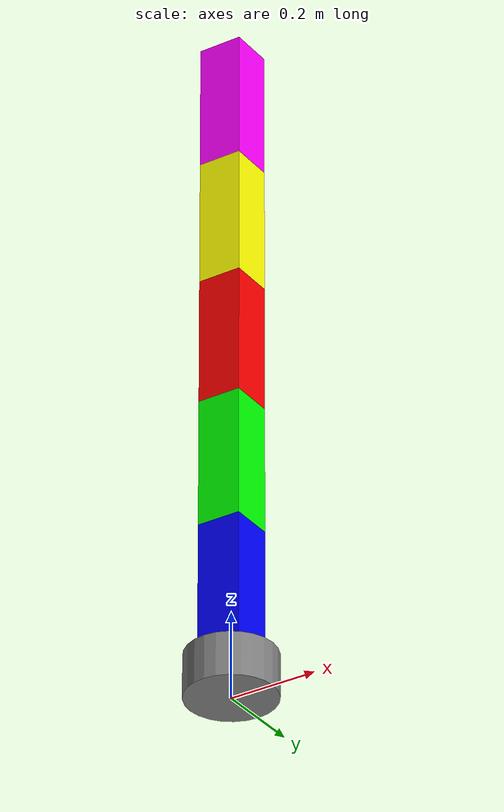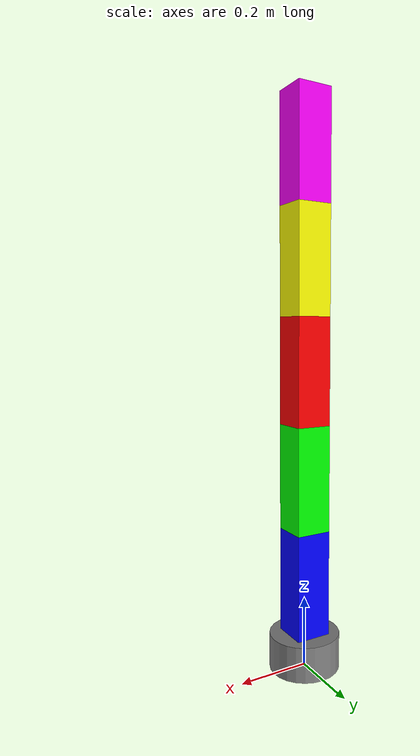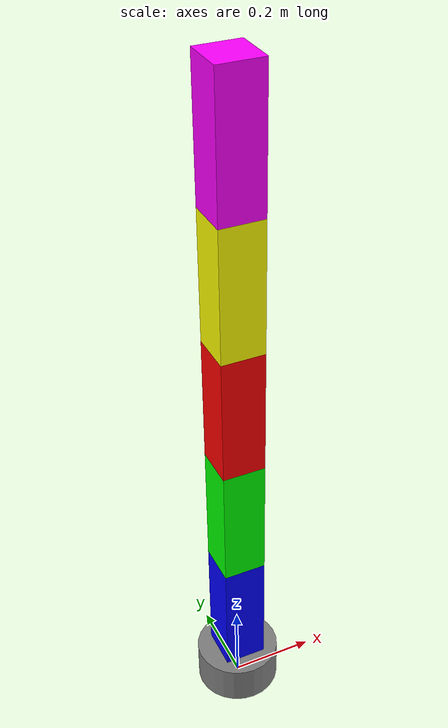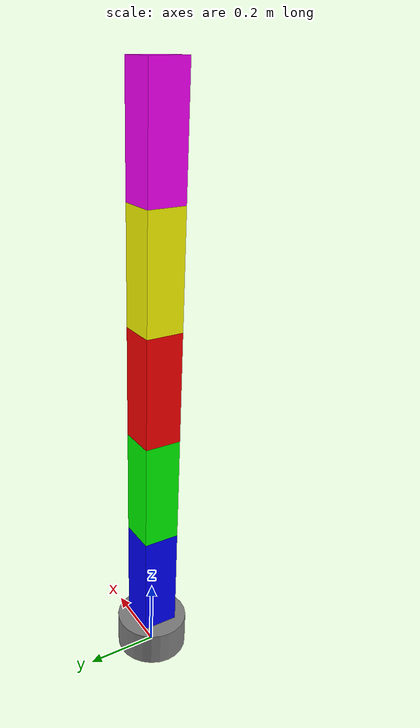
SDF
<?xml version="1.0" ?>
<sdf version="1.7">
  <model name="robot_5dof">
    <static>false</static>

    <joint name="world_joint" type="fixed">
      <parent>world</parent>
      <child>base_link</child>
    </joint>

    <link name="base_link">
      <pose>0 0 0.05 0 0 0</pose>
      <inertial>
        <mass>2.0</mass>
        <inertia>
          <ixx>0.0066</ixx><iyy>0.0066</iyy><izz>0.01</izz>
          <ixy>0</ixy><ixz>0</ixz><iyz>0</iyz>
        </inertia>
      </inertial>
      <visual name="base_vis">
        <geometry><cylinder><radius>0.1</radius><length>0.1</length></cylinder></geometry>
        <material><ambient>0.5 0.5 0.5 1</ambient><diffuse>0.5 0.5 0.5 1</diffuse></material>
      </visual>
      <collision name="base_col">
        <geometry><cylinder><radius>0.1</radius><length>0.1</length></cylinder></geometry>
      </collision>
    </link>

    <!-- Joint 1: Base rotation (around Z) -->
    <joint name="joint1" type="revolute">
      <pose relative_to="base_link">0 0 0.05 0 0 0</pose>
      <parent>base_link</parent>
      <child>link1</child>
      <axis>
        <xyz>0 0 1</xyz>
        <limit>
          <lower>-3.14</lower><upper>3.14</upper>
          <effort>500.0</effort><velocity>10</velocity>
        </limit>
        <dynamics><damping>10.0</damping><friction>2.0</friction></dynamics>
      </axis>
    </joint>

    <link name="link1">
      <pose relative_to="joint1">0 0 0.15 0 0 0</pose>
      <inertial>
        <mass>1.0</mass>
        <inertia>
          <ixx>0.0083</ixx><iyy>0.0083</iyy><izz>0.0016</izz>
          <ixy>0</ixy><ixz>0</ixz><iyz>0</iyz>
        </inertia>
      </inertial>
      <visual name="vis1">
        <geometry><box><size>0.1 0.1 0.3</size></box></geometry>
        <material><ambient>0 0 1 1</ambient><diffuse>0 0 1 1</diffuse></material>
      </visual>
      <collision name="col1">
        <geometry><box><size>0.1 0.1 0.3</size></box></geometry>
      </collision>
    </link>

    <!-- Joint 2: Pitch (around Y) -->
    <joint name="joint2" type="revolute">
      <pose relative_to="link1">0 0 0.15 0 0 0</pose>
      <parent>link1</parent>
      <child>link2</child>
      <axis>
        <xyz>0 1 0</xyz>
        <limit>
          <lower>-3.14</lower><upper>3.14</upper>
          <effort>500.0</effort><velocity>10</velocity>
        </limit>
        <dynamics><damping>10.0</damping><friction>2.0</friction></dynamics>
      </axis>
    </joint>

    <link name="link2">
      <pose relative_to="joint2">0 0 0.15 0 0 0</pose>
      <inertial>
        <mass>1.0</mass>
        <inertia>
          <ixx>0.0083</ixx><iyy>0.0083</iyy><izz>0.0016</izz>
          <ixy>0</ixy><ixz>0</ixz><iyz>0</iyz>
        </inertia>
      </inertial>
      <visual name="vis2">
        <geometry><box><size>0.1 0.1 0.3</size></box></geometry>
        <material><ambient>0 1 0 1</ambient><diffuse>0 1 0 1</diffuse></material>
      </visual>
      <collision name="col2">
        <geometry><box><size>0.1 0.1 0.3</size></box></geometry>
      </collision>
    </link>

    <!-- Joint 3: Pitch (around Y) -->
    <joint name="joint3" type="revolute">
      <pose relative_to="link2">0 0 0.15 0 0 0</pose>
      <parent>link2</parent>
      <child>link3</child>
      <axis>
        <xyz>0 1 0</xyz>
        <limit>
          <lower>-3.14</lower><upper>3.14</upper>
          <effort>500.0</effort><velocity>10</velocity>
        </limit>
        <dynamics><damping>10.0</damping><friction>2.0</friction></dynamics>
      </axis>
    </joint>

    <link name="link3">
      <pose relative_to="joint3">0 0 0.15 0 0 0</pose>
      <inertial>
        <mass>1.0</mass>
        <inertia>
          <ixx>0.0083</ixx><iyy>0.0083</iyy><izz>0.0016</izz>
          <ixy>0</ixy><ixz>0</ixz><iyz>0</iyz>
        </inertia>
      </inertial>
      <visual name="vis3">
        <geometry><box><size>0.1 0.1 0.3</size></box></geometry>
        <material><ambient>1 0 0 1</ambient><diffuse>1 0 0 1</diffuse></material>
      </visual>
      <collision name="col3">
        <geometry><box><size>0.1 0.1 0.3</size></box></geometry>
      </collision>
    </link>

    <!-- Joint 4: Pitch (around Y) -->
    <joint name="joint4" type="revolute">
      <pose relative_to="link3">0 0 0.15 0 0 0</pose>
      <parent>link3</parent>
      <child>link4</child>
      <axis>
        <xyz>0 1 0</xyz>
        <limit>
          <lower>-3.14</lower><upper>3.14</upper>
          <effort>500.0</effort><velocity>10</velocity>
        </limit>
        <dynamics><damping>10.0</damping><friction>2.0</friction></dynamics>
      </axis>
    </joint>

    <link name="link4">
      <pose relative_to="joint4">0 0 0.15 0 0 0</pose>
      <inertial>
        <mass>1.0</mass>
        <inertia>
          <ixx>0.0083</ixx><iyy>0.0083</iyy><izz>0.0016</izz>
          <ixy>0</ixy><ixz>0</ixz><iyz>0</iyz>
        </inertia>
      </inertial>
      <visual name="vis4">
        <geometry><box><size>0.1 0.1 0.3</size></box></geometry>
        <material><ambient>1 1 0 1</ambient><diffuse>1 1 0 1</diffuse></material>
      </visual>
      <collision name="col4">
        <geometry><box><size>0.1 0.1 0.3</size></box></geometry>
      </collision>
    </link>

    <!-- Joint 5: Pitch (around Y) - final link -->
    <joint name="joint5" type="revolute">
      <pose relative_to="link4">0 0 0.15 0 0 0</pose>
      <parent>link4</parent>
      <child>link5</child>
      <axis>
        <xyz>0 1 0</xyz>
        <limit>
          <lower>-3.14</lower><upper>3.14</upper>
          <effort>500.0</effort><velocity>10</velocity>
        </limit>
        <dynamics><damping>10.0</damping><friction>2.0</friction></dynamics>
      </axis>
    </joint>

    <link name="link5">
      <pose relative_to="joint5">0 0 0.15 0 0 0</pose>
      <inertial>
        <mass>1.0</mass>
        <inertia>
          <ixx>0.0083</ixx><iyy>0.0083</iyy><izz>0.0016</izz>
          <ixy>0</ixy><ixz>0</ixz><iyz>0</iyz>
        </inertia>
      </inertial>
      <visual name="vis5">
        <geometry><box><size>0.1 0.1 0.3</size></box></geometry>
        <material><ambient>1 0 1 1</ambient><diffuse>1 0 1 1</diffuse></material>
      </visual>
      <collision name="col5">
        <geometry><box><size>0.1 0.1 0.3</size></box></geometry>
      </collision>
    </link>

    <!-- Joint Position Controller (controls all 5 joints with the same PID gains) -->
    <plugin filename="gz-sim-joint-position-controller-system"
        name="gz::sim::systems::JointPositionController">
      <joint_name>joint1</joint_name>
      <joint_name>joint2</joint_name>
      <joint_name>joint3</joint_name>
      <joint_name>joint4</joint_name>
      <joint_name>joint5</joint_name>

      <p_gain>15000.0</p_gain>
      <i_gain>100.0</i_gain>
      <d_gain>500.0</d_gain>

      <cmd_max>1000.0</cmd_max>
      <cmd_min>-1000.0</cmd_min>
    </plugin>

  </model>
</sdf>
